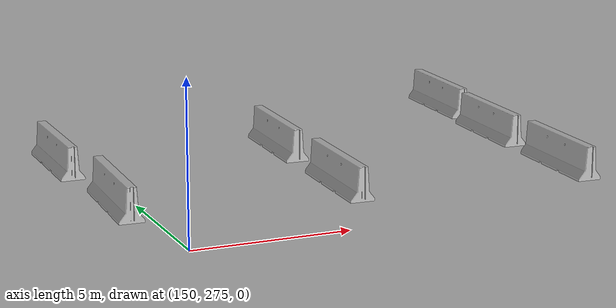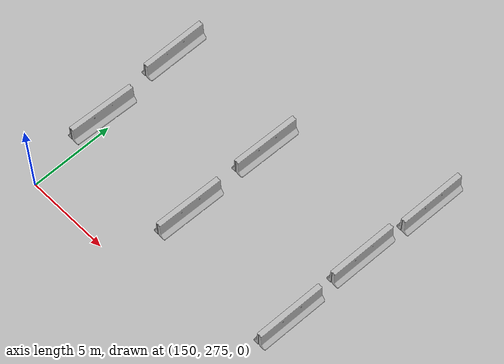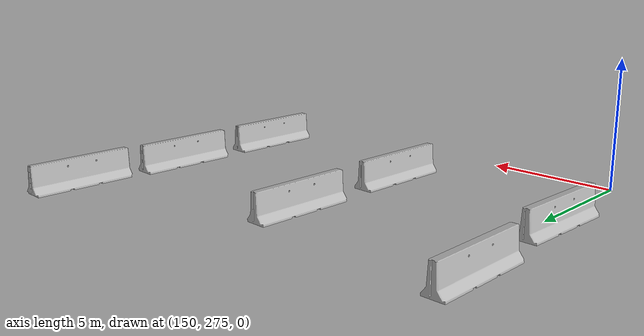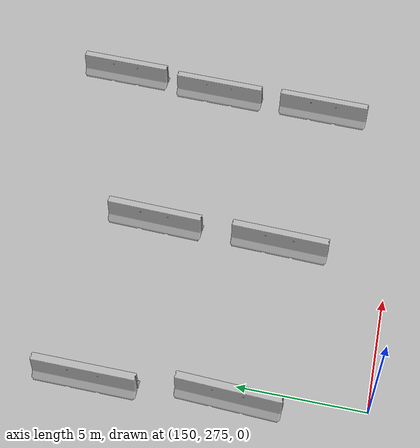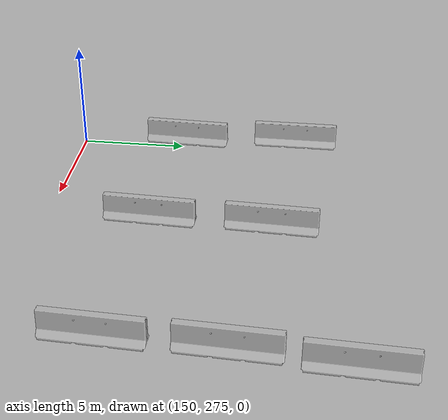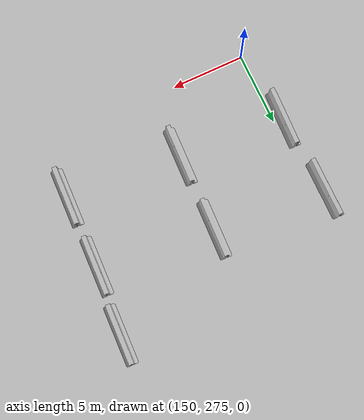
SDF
<sdf version="1.6">
 <world name="default">
  <model name="cafe">
   <pose>-3.41959 -1.35212 0 0 -0 0</pose>
   <static>1</static>
   <link name="link">
    <collision name="collision">
     <geometry><mesh><scale>0.254 0.254 0.254</scale><uri>model://mcity/meshes/mcity.obj</uri></mesh></geometry>
    </collision>
    <visual name="visual">
     <geometry><mesh><scale>0.254 0.254 0.254</scale><uri>model://mcity/meshes/mcity.obj</uri></mesh></geometry>
    </visual>
   </link>
  </model>
  <model name="jersey_barrier_7">
   <static>1</static>
   <link name="link">
    <visual name="visual">
     <geometry><mesh><uri>model://jersey_barrier/meshes/jersey_barrier.dae</uri></mesh></geometry>
    </visual>
    <collision name="upright">
     <pose>0 0 0.5715 0 -0 0</pose>
     <geometry><box><size>4.06542 0.3063 1.143</size></box></geometry>
    </collision>
    <collision name="base">
     <pose>0 0 0.032258 0 -0 0</pose>
     <geometry><box><size>4.06542 0.8107 0.064516</size></box></geometry>
    </collision>
    <collision name="base2">
     <pose>0 0 0.1 0 -0 0</pose>
     <geometry><box><size>4.06542 0.65 0.1</size></box></geometry>
    </collision>
    <collision name="base3">
     <pose>0 0 0.2 0 -0 0</pose>
     <geometry><box><size>4.06542 0.5 0.1</size></box></geometry>
    </collision>
    <collision name="left-angle">
     <pose>0 -0.224 0.2401 0.9 -0 0</pose>
     <geometry><box><size>4.06542 0.5 0.064516</size></box></geometry>
    </collision>
    <collision name="right-angle">
     <pose>0 0.224 0.2401 -0.9 0 0</pose>
     <geometry><box><size>4.06542 0.5 0.064516</size></box></geometry>
    </collision>
   </link>
   <pose>149.035 285.604 0 0 0 -1.57355</pose>
  </model>
  <model name="jersey_barrier_8_clone_clone_8">
   <static>1</static>
   <link name="link">
    <visual name="visual">
     <geometry><mesh><uri>model://jersey_barrier/meshes/jersey_barrier.dae</uri></mesh></geometry>
    </visual>
    <collision name="upright">
     <pose>0 0 0.5715 0 -0 0</pose>
     <geometry><box><size>4.06542 0.3063 1.143</size></box></geometry>
    </collision>
    <collision name="base">
     <pose>0 0 0.032258 0 -0 0</pose>
     <geometry><box><size>4.06542 0.8107 0.064516</size></box></geometry>
    </collision>
    <collision name="base2">
     <pose>0 0 0.1 0 -0 0</pose>
     <geometry><box><size>4.06542 0.65 0.1</size></box></geometry>
    </collision>
    <collision name="base3">
     <pose>0 0 0.2 0 -0 0</pose>
     <geometry><box><size>4.06542 0.5 0.1</size></box></geometry>
    </collision>
    <collision name="left-angle">
     <pose>0 -0.224 0.2401 0.9 -0 0</pose>
     <geometry><box><size>4.06542 0.5 0.064516</size></box></geometry>
    </collision>
    <collision name="right-angle">
     <pose>0 0.224 0.2401 -0.9 0 0</pose>
     <geometry><box><size>4.06542 0.5 0.064516</size></box></geometry>
    </collision>
   </link>
   <pose>156.765 284.902 0 0 0 -1.60883</pose>
  </model>
  <model name="jersey_barrier_8_clone_clone_10">
   <static>1</static>
   <link name="link">
    <visual name="visual">
     <geometry><mesh><uri>model://jersey_barrier/meshes/jersey_barrier.dae</uri></mesh></geometry>
    </visual>
    <collision name="upright">
     <pose>0 0 0.5715 0 -0 0</pose>
     <geometry><box><size>4.06542 0.3063 1.143</size></box></geometry>
    </collision>
    <collision name="base">
     <pose>0 0 0.032258 0 -0 0</pose>
     <geometry><box><size>4.06542 0.8107 0.064516</size></box></geometry>
    </collision>
    <collision name="base2">
     <pose>0 0 0.1 0 -0 0</pose>
     <geometry><box><size>4.06542 0.65 0.1</size></box></geometry>
    </collision>
    <collision name="base3">
     <pose>0 0 0.2 0 -0 0</pose>
     <geometry><box><size>4.06542 0.5 0.1</size></box></geometry>
    </collision>
    <collision name="left-angle">
     <pose>0 -0.224 0.2401 0.9 -0 0</pose>
     <geometry><box><size>4.06542 0.5 0.064516</size></box></geometry>
    </collision>
    <collision name="right-angle">
     <pose>0 0.224 0.2401 -0.9 0 0</pose>
     <geometry><box><size>4.06542 0.5 0.064516</size></box></geometry>
    </collision>
   </link>
   <pose>165.066 288.498 0 0 0 -1.60883</pose>
  </model>
  <model name="jersey_barrier_8_clone_clone_11">
   <static>1</static>
   <link name="link">
    <visual name="visual">
     <geometry><mesh><uri>model://jersey_barrier/meshes/jersey_barrier.dae</uri></mesh></geometry>
    </visual>
    <collision name="upright">
     <pose>0 0 0.5715 0 -0 0</pose>
     <geometry><box><size>4.06542 0.3063 1.143</size></box></geometry>
    </collision>
    <collision name="base">
     <pose>0 0 0.032258 0 -0 0</pose>
     <geometry><box><size>4.06542 0.8107 0.064516</size></box></geometry>
    </collision>
    <collision name="base2">
     <pose>0 0 0.1 0 -0 0</pose>
     <geometry><box><size>4.06542 0.65 0.1</size></box></geometry>
    </collision>
    <collision name="base3">
     <pose>0 0 0.2 0 -0 0</pose>
     <geometry><box><size>4.06542 0.5 0.1</size></box></geometry>
    </collision>
    <collision name="left-angle">
     <pose>0 -0.224 0.2401 0.9 -0 0</pose>
     <geometry><box><size>4.06542 0.5 0.064516</size></box></geometry>
    </collision>
    <collision name="right-angle">
     <pose>0 0.224 0.2401 -0.9 0 0</pose>
     <geometry><box><size>4.06542 0.5 0.064516</size></box></geometry>
    </collision>
   </link>
   <pose>164.676 283.855 0 0 0 -1.60883</pose>
  </model>
  <model name="jersey_barrier_8_clone_clone_12">
   <static>1</static>
   <link name="link">
    <visual name="visual">
     <geometry><mesh><uri>model://jersey_barrier/meshes/jersey_barrier.dae</uri></mesh></geometry>
    </visual>
    <collision name="upright">
     <pose>0 0 0.5715 0 -0 0</pose>
     <geometry><box><size>4.06542 0.3063 1.143</size></box></geometry>
    </collision>
    <collision name="base">
     <pose>0 0 0.032258 0 -0 0</pose>
     <geometry><box><size>4.06542 0.8107 0.064516</size></box></geometry>
    </collision>
    <collision name="base2">
     <pose>0 0 0.1 0 -0 0</pose>
     <geometry><box><size>4.06542 0.65 0.1</size></box></geometry>
    </collision>
    <collision name="base3">
     <pose>0 0 0.2 0 -0 0</pose>
     <geometry><box><size>4.06542 0.5 0.1</size></box></geometry>
    </collision>
    <collision name="left-angle">
     <pose>0 -0.224 0.2401 0.9 -0 0</pose>
     <geometry><box><size>4.06542 0.5 0.064516</size></box></geometry>
    </collision>
    <collision name="right-angle">
     <pose>0 0.224 0.2401 -0.9 0 0</pose>
     <geometry><box><size>4.06542 0.5 0.064516</size></box></geometry>
    </collision>
   </link>
   <pose>156.69 279.54 0 0 0 -1.60883</pose>
  </model>
  <model name="jersey_barrier_8_clone_clone_13">
   <static>1</static>
   <link name="link">
    <visual name="visual">
     <geometry><mesh><uri>model://jersey_barrier/meshes/jersey_barrier.dae</uri></mesh></geometry>
    </visual>
    <collision name="upright">
     <pose>0 0 0.5715 0 -0 0</pose>
     <geometry><box><size>4.06542 0.3063 1.143</size></box></geometry>
    </collision>
    <collision name="base">
     <pose>0 0 0.032258 0 -0 0</pose>
     <geometry><box><size>4.06542 0.8107 0.064516</size></box></geometry>
    </collision>
    <collision name="base2">
     <pose>0 0 0.1 0 -0 0</pose>
     <geometry><box><size>4.06542 0.65 0.1</size></box></geometry>
    </collision>
    <collision name="base3">
     <pose>0 0 0.2 0 -0 0</pose>
     <geometry><box><size>4.06542 0.5 0.1</size></box></geometry>
    </collision>
    <collision name="left-angle">
     <pose>0 -0.224 0.2401 0.9 -0 0</pose>
     <geometry><box><size>4.06542 0.5 0.064516</size></box></geometry>
    </collision>
    <collision name="right-angle">
     <pose>0 0.224 0.2401 -0.9 0 0</pose>
     <geometry><box><size>4.06542 0.5 0.064516</size></box></geometry>
    </collision>
   </link>
   <pose>164.572 278.908 0 0 0 -1.60883</pose>
  </model>
  <model name="jersey_barrier_8_clone_clone_14">
   <static>1</static>
   <link name="link">
    <visual name="visual">
     <geometry><mesh><uri>model://jersey_barrier/meshes/jersey_barrier.dae</uri></mesh></geometry>
    </visual>
    <collision name="upright">
     <pose>0 0 0.5715 0 -0 0</pose>
     <geometry><box><size>4.06542 0.3063 1.143</size></box></geometry>
    </collision>
    <collision name="base">
     <pose>0 0 0.032258 0 -0 0</pose>
     <geometry><box><size>4.06542 0.8107 0.064516</size></box></geometry>
    </collision>
    <collision name="base2">
     <pose>0 0 0.1 0 -0 0</pose>
     <geometry><box><size>4.06542 0.65 0.1</size></box></geometry>
    </collision>
    <collision name="base3">
     <pose>0 0 0.2 0 -0 0</pose>
     <geometry><box><size>4.06542 0.5 0.1</size></box></geometry>
    </collision>
    <collision name="left-angle">
     <pose>0 -0.224 0.2401 0.9 -0 0</pose>
     <geometry><box><size>4.06542 0.5 0.064516</size></box></geometry>
    </collision>
    <collision name="right-angle">
     <pose>0 0.224 0.2401 -0.9 0 0</pose>
     <geometry><box><size>4.06542 0.5 0.064516</size></box></geometry>
    </collision>
   </link>
   <pose>149.391 280.156 0 0 0 -1.60883</pose>
  </model>
 </world>
</sdf>
